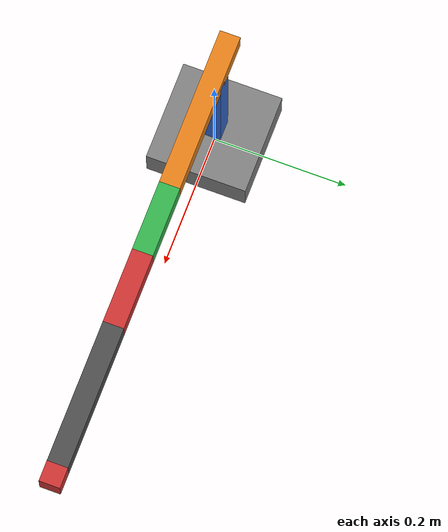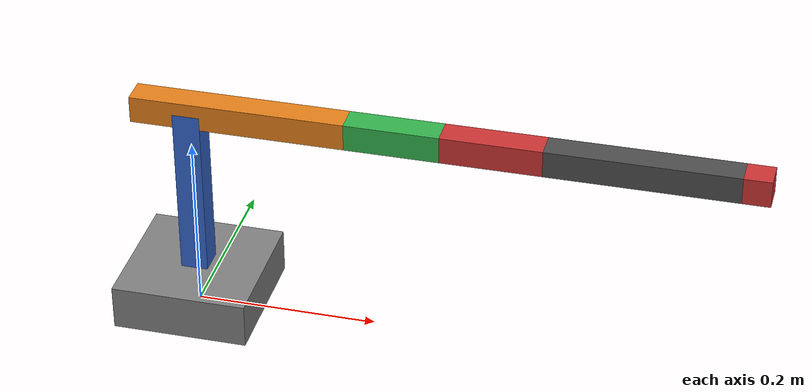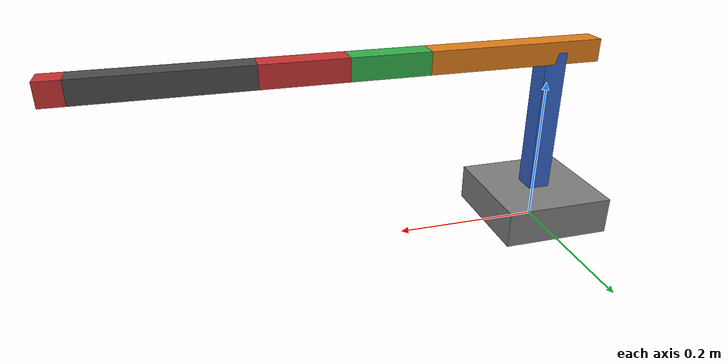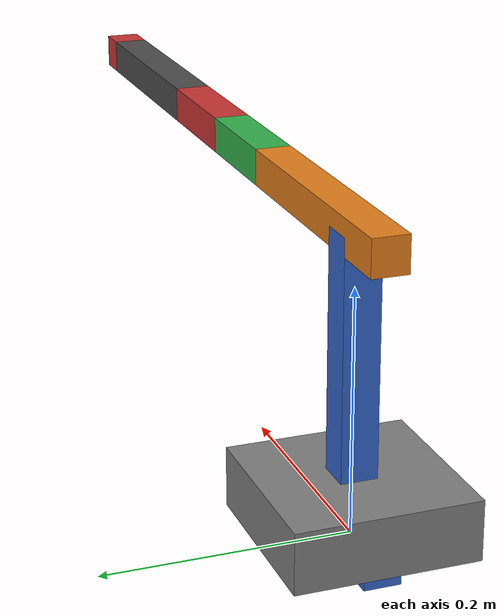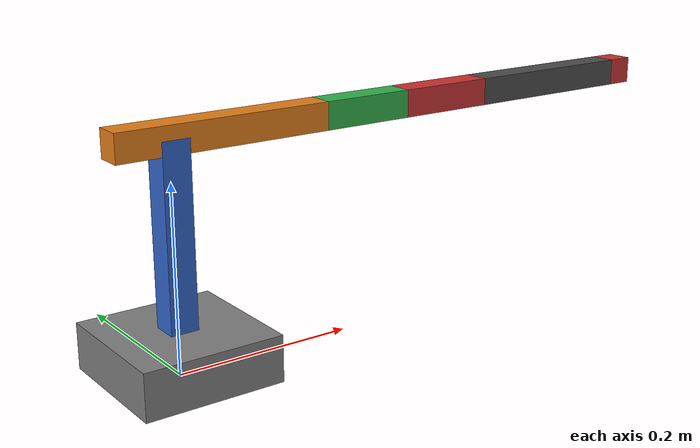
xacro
<?xml version="1.0"?>
<robot xmlns:xacro="http://www.ros.org/wiki/xacro" name="me380">

  <!-- alpha in radians (90° = pi/2): -->
  <xacro:property name="alpha1" value="0.0"/>                    <!-- Link 1: 0° -->
  <xacro:property name="alpha2" value="-1.5707963267948966"/>      <!-- Link 2: 90° -->
  <xacro:property name="alpha3" value="0.0"/>                       <!-- Link 3: 0° -->
  <xacro:property name="alpha4" value="1.5707963267948966"/>        <!-- Link 4: 90° -->
  <xacro:property name="alpha5" value="1.5707963267948966"/>        <!-- Link 5: 90° -->
  <xacro:property name="alpha6" value="1.5707963267948966"/>       <!-- Link 6: 90° -->

  <!-- ============ Visual geometry: boxes follow kinematic chain (outline of robot) ============ -->

  <!-- Cross-section thickness for arm links -->
  <xacro:property name="thick" value="0.03"/>
  <!-- Height and offset of slanted shoulder-->
  <xacro:property name="link1_height" value="0.245"/>
  <xacro:property name="link1_side_offset" value="-0.0622"/>

  <!-- Elbow (middle piece) length -->
  <xacro:property name="link2_len" value="0.2355"/>
  <!-- 3rd to 4th dof length (4th dof is new added dof) to face of 4th dof -->
  <xacro:property name="link3_len" value="0.103"/>
  <!-- end of 4th dof to write differential -->
  <xacro:property name="link4_len" value="0.110"/>
  <!-- placeholder length -->
  <xacro:property name="link5_len" value="0.0"/>
  <!-- link6: diff to midl of gripper dist-->
  <xacro:property name="gripper_len" value="0.207"/>

  <!-- ============ Base ============ -->
  <link name="base_link">
    <visual>
      <origin xyz="0 0 0.025" rpy="0 0 0"/>
      <geometry>
        <box size="0.15, 0.15, 0.05"/>
      </geometry>
      <material name="grey">
        <color rgba="0.5 0.5 0.5 1"/>
      </material>
    </visual>
  </link>

  <!-- Joint 1: base rotation. DH (a0=0, d1=1, alpha0=0°) -->
  <joint name="joint1" type="revolute">
    <parent link="base_link"/>
    <child link="link1"/>
    <origin xyz="0 0 0" rpy="${alpha1} 0 0"/>
    <axis xyz="0 0 -1"/>
    <!-- +-170 deg limits -->
    <limit lower="-2.96706" upper="2.96706" effort="10" velocity="1"/>
  </joint>
  <link name="link1">
    <!-- Horizontal segment: from origin to joint2 (length a2 = 0.2 along x) -->
    <visual>
      <origin xyz="${link1_side_offset/2} 0 0" rpy="0 0 0"/>
      <geometry>
        <box size="${link1_side_offset} ${thick} ${thick}"/>
      </geometry>
      <material name="blue">
        <color rgba="0.2 0.4 0.8 1"/>
      </material>
    </visual>

    <!-- Vertical segment: d1 downward (column from joint1 down toward base) -->
    <visual>
      <origin xyz="0 0 ${link1_height/2}" rpy="0 0 0"/>
      <geometry>
        <box size="${thick} ${thick} ${link1_height}"/>
      </geometry>
      <material name="blue">
        <color rgba="0.2 0.4 0.8 1"/>
      </material>
    </visual>
  </link>

  <!-- Joint 2: shoulder. DH (a1=-0.2, d2=0, alpha1=90°) -->
  <joint name="joint2" type="revolute">
    <parent link="link1"/>
    <child link="link2"/>
    <origin xyz="${link1_side_offset} 0 ${link1_height}" rpy="${alpha2} 0 0"/>
    <axis xyz="0 0 -1"/>
    <limit lower="-0.08727" upper="3.92699" effort="10" velocity="1"/>
  </joint>
  <link name="link2">
    <visual>
      <origin xyz="${link2_len/2} 0 0" rpy="0 0 0"/>
      <geometry>
        <box size="${link2_len} ${thick} ${thick}"/>
      </geometry>
      <material name="orange">
        <color rgba="0.9 0.5 0.1 1"/>
      </material>
    </visual>
  </link>

  <!-- Joint 3: elbow. DH (a2=1, d3=0, alpha2=0°). Axis same as joint2: both rotate about link2 z (0 1 0 in link3 = link2’s z after R_x(90) from link1). -->
  <joint name="joint3" type="revolute">
    <parent link="link2"/>
    <child link="link3"/>
    <origin xyz="${link2_len} 0 0" rpy="${alpha3} 0 0"/>
    <axis xyz="0 0 -1"/>
    <limit lower="-1.74533" upper="1.74533" effort="10" velocity="1"/>
  </joint>
  <link name="link3">
    <visual>
      <origin xyz="${link3_len/2} 0 0 " rpy="0 0 0"/>
      <geometry>
        <box size=" ${link3_len} ${thick} ${thick}"/>
      </geometry>
      <material name="green">
        <color rgba="0.2 0.7 0.3 1"/>
      </material>
    </visual>
  </link>

  <!-- Joint 4: wrist 1. DH (a3=0, d4=1, alpha3=90°) -->
  <joint name="joint4" type="revolute">
    <parent link="link3"/>
    <child link="link4"/>
    <origin xyz="${link3_len} 0 0" rpy="0 ${alpha4} 0"/>
    <axis xyz="0 0 1"/>
    <limit lower="-2.61799" upper="2.61799" effort="10" velocity="1"/>
  </joint>
  <link name="link4">
    <visual>
      <origin xyz=" 0 0 ${link4_len/2}" rpy="0 0 0"/>
      <geometry>
        <box size=" ${thick} ${thick} ${link4_len}"/>
      </geometry>
      <material name="red">
        <color rgba="0.8 0.2 0.2 1"/>
      </material>
    </visual>
  </link>

  <!-- Joint 5: wrist 2. DH (a4=-0.5, d5=0, alpha4=90°) -->
  <joint name="joint5" type="revolute">
    <parent link="link4"/>
    <child link="link5"/>
    <origin xyz="0 0 ${link4_len}" rpy=" 0 ${alpha5} 0"/>
    <axis xyz="0 0 1"/>
    <limit lower="-1.57080" upper="1.57080" effort="10" velocity="1"/>
  </joint>
  <link name="link5">
    <visual>
      <origin xyz="-${link5_len/2} 0 0 " rpy="0 0 0"/>
      <geometry>
        <box size=" ${link5_len} ${thick} ${thick}"/>
      </geometry>
      <material name="purple">
        <color rgba="0.5 0.2 0.6 1"/>
      </material>
    </visual>
  </link>

  <!-- Joint 6: wrist 3. DH (a5=0, d6=0.3, alpha5=90°) -->
  <joint name="joint6" type="revolute">
    <parent link="link5"/>
    <child link="link6"/>
    <origin xyz="-${link5_len} 0 0" rpy=" 0 ${alpha6} 0"/>
    <axis xyz="0 0 -1"/>
    <limit lower="-2.96706" upper="2.96706" effort="10" velocity="1"/>
  </joint>
  <link name="link6">
    <visual>
      <origin xyz="0 0 ${-gripper_len/2}" rpy="0 0 0"/>
      <geometry>
        <box size=" ${thick} ${thick} ${gripper_len}"/>
      </geometry>
      <material name="dark_grey">
        <color rgba="0.3 0.3 0.3 1"/>
      </material>
    </visual>

  </link>

  <!-- End-effector link for MoveIt (planning frame / tip of robot) -->
  <joint name="ee_fixed" type="fixed">
    <parent link="link6"/>
    <child link="ee_link"/>
    <origin xyz="0 0 ${-gripper_len}" rpy="0 0 0"/>
  </joint>
  <link name="ee_link">
    <visual>
      <origin xyz="0 0 ${-thick/2}" rpy="0 0 0"/>
      <geometry>
        <box size=" ${thick} ${thick} ${thick}"/>
      </geometry>
      <material name="red">
        <color rgba="0.8 0.2 0.2 1"/>
      </material>
    </visual>

  </link>
</robot>
